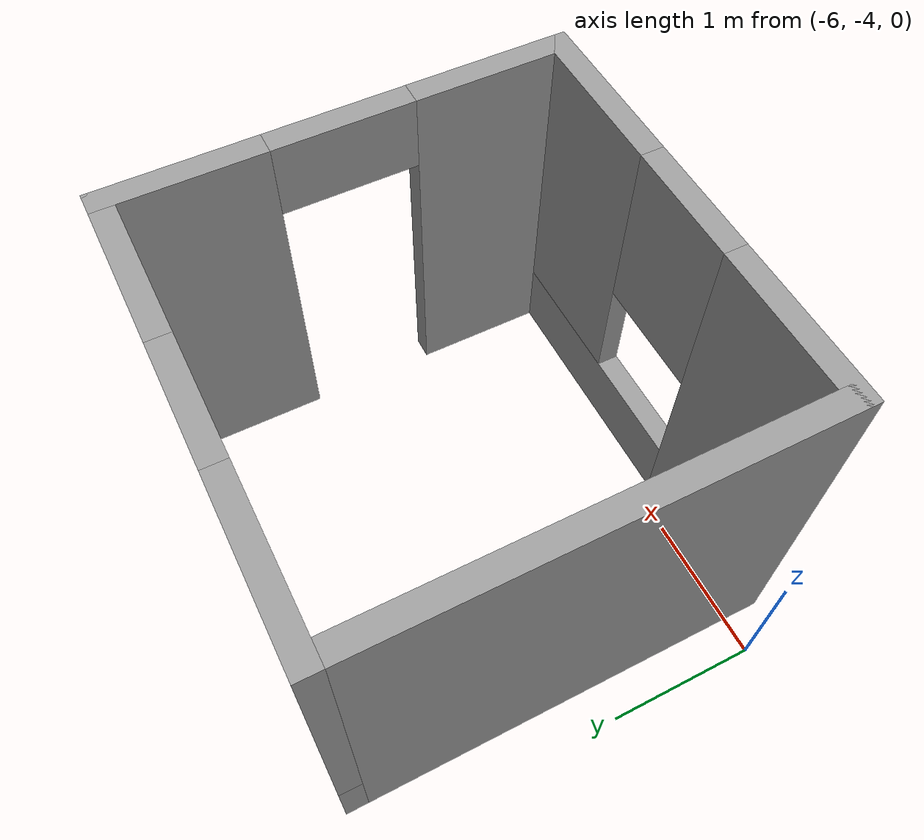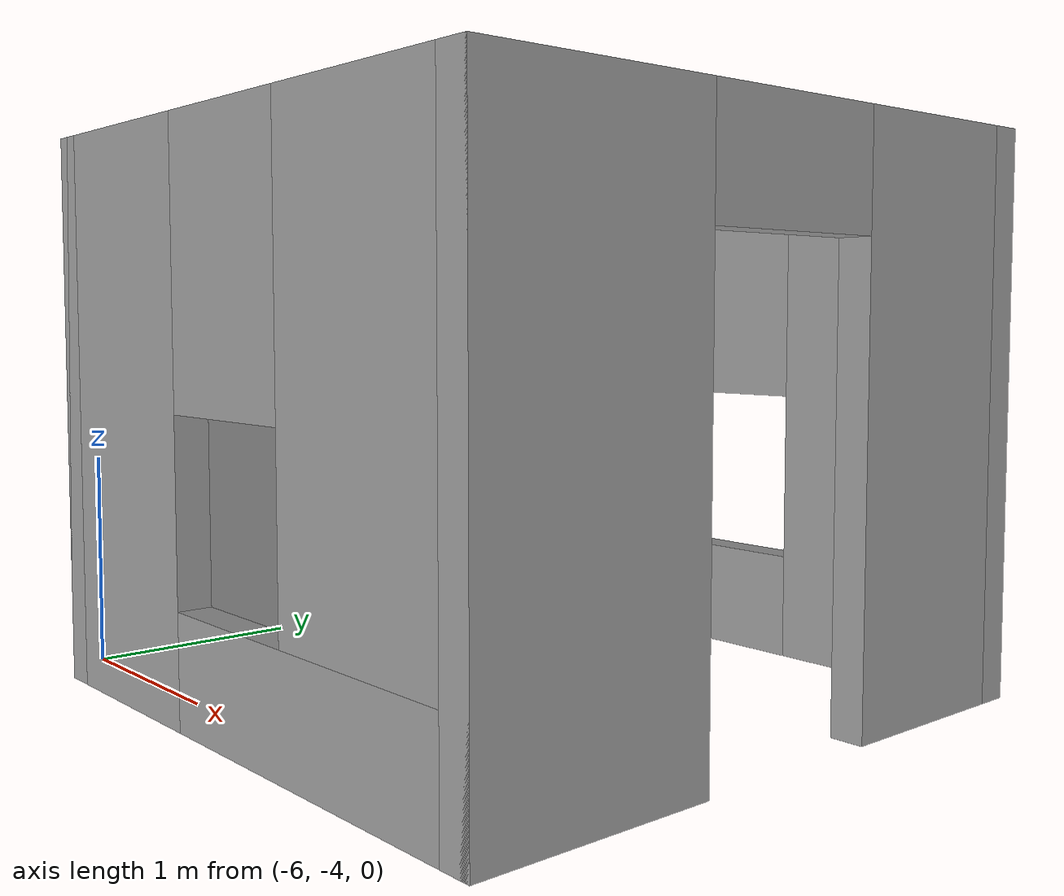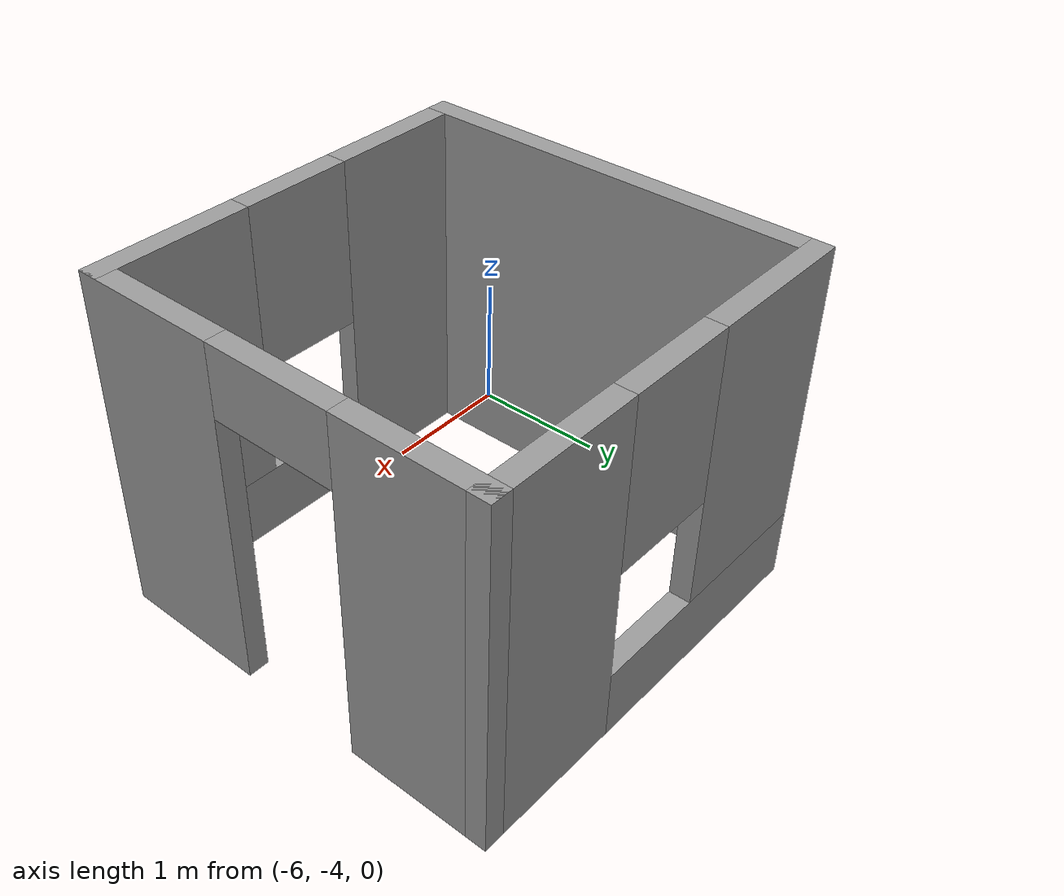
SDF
<?xml version='1.0'?>
<sdf version='1.6'>
  <model name='office1'>
    <pose>-2.8775 -2.1225 0 0 -0 0</pose>
    <link name='Wall_0'>
      <pose>-1.3775 -2.0475 0 0 -0 0</pose>
      <visual name='Wall_0_Visual_0'>
        <pose>-0.9525 0 1.25 0 -0 0</pose>
        <geometry>
          <box>
            <size>1.095 0.15 2.5</size>
          </box>
        </geometry>
        <material>
          <script>
            <uri>file://media/materials/scripts/gazebo.material</uri>
            <name>Gazebo/Grey</name>
          </script>
          <ambient>1 1 1 1</ambient>
        </material>
        <meta>
          <layer>0</layer>
        </meta>
      </visual>
      <collision name='Wall_0_Collision_0'>
        <geometry>
          <box>
            <size>1.095 0.15 2.5</size>
          </box>
        </geometry>
        <pose>-0.9525 0 1.25 0 -0 0</pose>
      </collision>
      <visual name='Wall_0_Visual_1'>
        <pose>0.5475 0 0.25 0 -0 0</pose>
        <geometry>
          <box>
            <size>1.905 0.15 0.5</size>
          </box>
        </geometry>
        <material>
          <script>
            <uri>file://media/materials/scripts/gazebo.material</uri>
            <name>Gazebo/Grey</name>
          </script>
          <ambient>1 1 1 1</ambient>
        </material>
        <meta>
          <layer>0</layer>
        </meta>
      </visual>
      <collision name='Wall_0_Collision_1'>
        <geometry>
          <box>
            <size>1.905 0.15 0.5</size>
          </box>
        </geometry>
        <pose>0.5475 0 0.25 0 -0 0</pose>
      </collision>
      <visual name='Wall_0_Visual_2'>
        <pose>0.9475 0 1.5 0 -0 0</pose>
        <geometry>
          <box>
            <size>1.105 0.15 2</size>
          </box>
        </geometry>
        <material>
          <script>
            <uri>file://media/materials/scripts/gazebo.material</uri>
            <name>Gazebo/Grey</name>
          </script>
          <ambient>1 1 1 1</ambient>
        </material>
        <meta>
          <layer>0</layer>
        </meta>
      </visual>
      <collision name='Wall_0_Collision_2'>
        <geometry>
          <box>
            <size>1.105 0.15 2</size>
          </box>
        </geometry>
        <pose>0.9475 0 1.5 0 -0 0</pose>
      </collision>
      <visual name='Wall_0_Visual_3'>
        <pose>-0.005 0 1.9 0 -0 0</pose>
        <geometry>
          <box>
            <size>0.8 0.15 1.2</size>
          </box>
        </geometry>
        <material>
          <script>
            <uri>file://media/materials/scripts/gazebo.material</uri>
            <name>Gazebo/Grey</name>
          </script>
          <ambient>1 1 1 1</ambient>
        </material>
        <meta>
          <layer>0</layer>
        </meta>
      </visual>
      <collision name='Wall_0_Collision_3'>
        <geometry>
          <box>
            <size>0.8 0.15 1.2</size>
          </box>
        </geometry>
        <pose>-0.005 0 1.9 0 -0 0</pose>
      </collision>
    </link>
    <link name='Wall_1'>
      <pose>0.0475 -0.6225 0 0 -0 1.5708</pose>
      <visual name='Wall_1_Visual_0'>
        <pose>-0.9675 0 1.25 0 -0 0</pose>
        <geometry>
          <box>
            <size>1.065 0.15 2.5</size>
          </box>
        </geometry>
        <material>
          <script>
            <uri>file://media/materials/scripts/gazebo.material</uri>
            <name>Gazebo/Grey</name>
          </script>
          <ambient>1 1 1 1</ambient>
        </material>
        <meta>
          <layer>0</layer>
        </meta>
      </visual>
      <collision name='Wall_1_Collision_0'>
        <geometry>
          <box>
            <size>1.065 0.15 2.5</size>
          </box>
        </geometry>
        <pose>-0.9675 0 1.25 0 -0 0</pose>
      </collision>
      <visual name='Wall_1_Visual_1'>
        <pose>0.9825 0 1.25 0 -0 0</pose>
        <geometry>
          <box>
            <size>1.035 0.15 2.5</size>
          </box>
        </geometry>
        <material>
          <script>
            <uri>file://media/materials/scripts/gazebo.material</uri>
            <name>Gazebo/Grey</name>
          </script>
          <ambient>1 1 1 1</ambient>
        </material>
        <meta>
          <layer>0</layer>
        </meta>
      </visual>
      <collision name='Wall_1_Collision_1'>
        <geometry>
          <box>
            <size>1.035 0.15 2.5</size>
          </box>
        </geometry>
        <pose>0.9825 0 1.25 0 -0 0</pose>
      </collision>
      <visual name='Wall_1_Visual_2'>
        <pose>0.015 0 2.25 0 -0 0</pose>
        <geometry>
          <box>
            <size>0.9 0.15 0.5</size>
          </box>
        </geometry>
        <material>
          <script>
            <uri>file://media/materials/scripts/gazebo.material</uri>
            <name>Gazebo/Grey</name>
          </script>
          <ambient>1 1 1 1</ambient>
        </material>
        <meta>
          <layer>0</layer>
        </meta>
      </visual>
      <collision name='Wall_1_Collision_2'>
        <geometry>
          <box>
            <size>0.9 0.15 0.5</size>
          </box>
        </geometry>
        <pose>0.015 0 2.25 0 -0 0</pose>
      </collision>
    </link>
    <link name='Wall_2'>
      <pose>-1.3775 0.8025 0 0 -0 3.14159</pose>
      <visual name='Wall_2_Visual_0'>
        <pose>-0.9525 0 1.25 0 -0 0</pose>
        <geometry>
          <box>
            <size>1.095 0.15 2.5</size>
          </box>
        </geometry>
        <material>
          <script>
            <uri>file://media/materials/scripts/gazebo.material</uri>
            <name>Gazebo/Grey</name>
          </script>
          <ambient>1 1 1 1</ambient>
        </material>
        <meta>
          <layer>0</layer>
        </meta>
      </visual>
      <collision name='Wall_2_Collision_0'>
        <geometry>
          <box>
            <size>1.095 0.15 2.5</size>
          </box>
        </geometry>
        <pose>-0.9525 0 1.25 0 -0 0</pose>
      </collision>
      <visual name='Wall_2_Visual_1'>
        <pose>0.5475 0 0.25 0 -0 0</pose>
        <geometry>
          <box>
            <size>1.905 0.15 0.5</size>
          </box>
        </geometry>
        <material>
          <script>
            <uri>file://media/materials/scripts/gazebo.material</uri>
            <name>Gazebo/Grey</name>
          </script>
          <ambient>1 1 1 1</ambient>
        </material>
        <meta>
          <layer>0</layer>
        </meta>
      </visual>
      <collision name='Wall_2_Collision_1'>
        <geometry>
          <box>
            <size>1.905 0.15 0.5</size>
          </box>
        </geometry>
        <pose>0.5475 0 0.25 0 -0 0</pose>
      </collision>
      <visual name='Wall_2_Visual_2'>
        <pose>0.9475 0 1.5 0 -0 0</pose>
        <geometry>
          <box>
            <size>1.105 0.15 2</size>
          </box>
        </geometry>
        <material>
          <script>
            <uri>file://media/materials/scripts/gazebo.material</uri>
            <name>Gazebo/Grey</name>
          </script>
          <ambient>1 1 1 1</ambient>
        </material>
        <meta>
          <layer>0</layer>
        </meta>
      </visual>
      <collision name='Wall_2_Collision_2'>
        <geometry>
          <box>
            <size>1.105 0.15 2</size>
          </box>
        </geometry>
        <pose>0.9475 0 1.5 0 -0 0</pose>
      </collision>
      <visual name='Wall_2_Visual_3'>
        <pose>-0.005 0 1.9 0 -0 0</pose>
        <geometry>
          <box>
            <size>0.8 0.15 1.2</size>
          </box>
        </geometry>
        <material>
          <script>
            <uri>file://media/materials/scripts/gazebo.material</uri>
            <name>Gazebo/Grey</name>
          </script>
          <ambient>1 1 1 1</ambient>
        </material>
        <meta>
          <layer>0</layer>
        </meta>
      </visual>
      <collision name='Wall_2_Collision_3'>
        <geometry>
          <box>
            <size>0.8 0.15 1.2</size>
          </box>
        </geometry>
        <pose>-0.005 0 1.9 0 -0 0</pose>
      </collision>
    </link>
    <link name='Wall_3'>
      <collision name='Wall_3_Collision'>
        <geometry>
          <box>
            <size>3 0.15 2.5</size>
          </box>
        </geometry>
        <pose>0 0 1.25 0 -0 0</pose>
      </collision>
      <visual name='Wall_3_Visual'>
        <pose>0 0 1.25 0 -0 0</pose>
        <geometry>
          <box>
            <size>3 0.15 2.5</size>
          </box>
        </geometry>
        <material>
          <script>
            <uri>file://media/materials/scripts/gazebo.material</uri>
            <name>Gazebo/Grey</name>
          </script>
          <ambient>1 1 1 1</ambient>
        </material>
        <meta>
          <layer>0</layer>
        </meta>
      </visual>
      <pose>-2.8025 -0.6225 0 0 -0 -1.5708</pose>
    </link>
    <static>1</static>
  </model>
</sdf>
